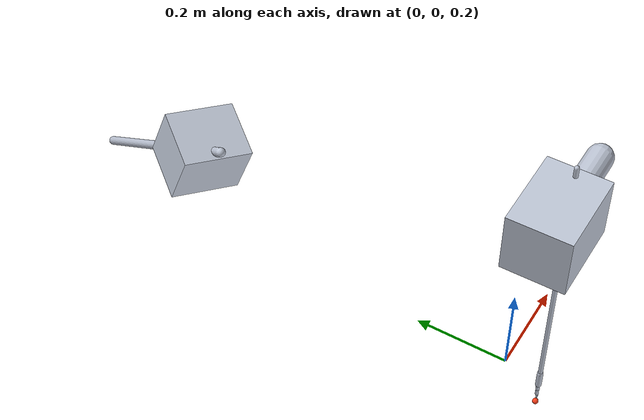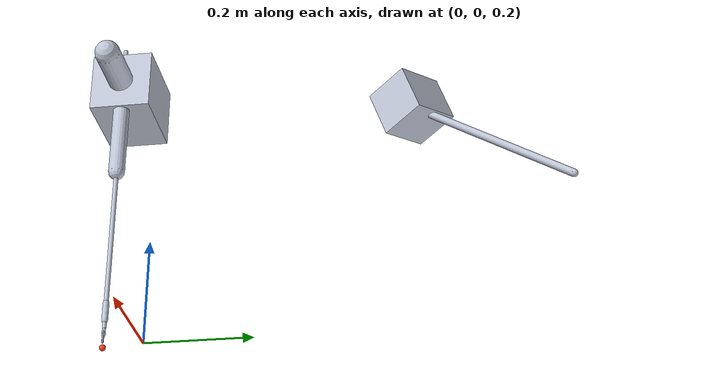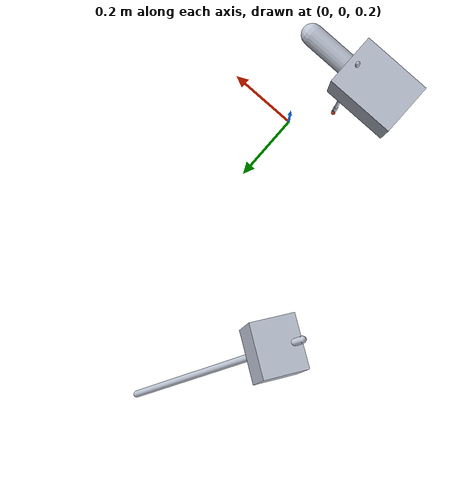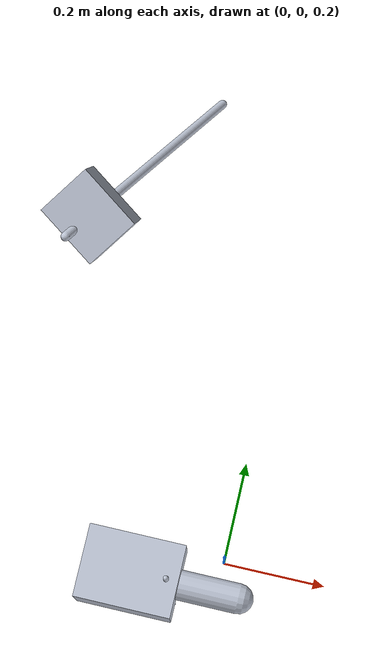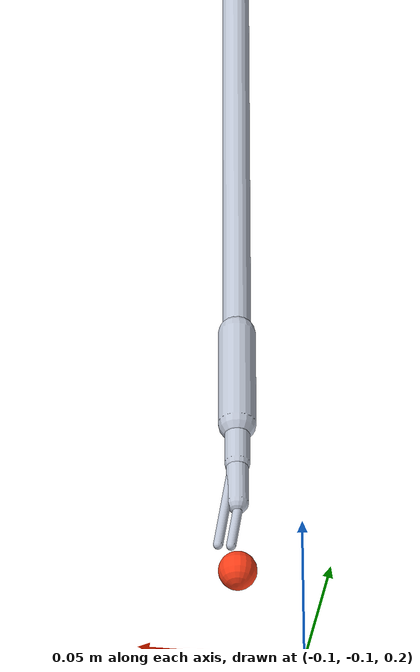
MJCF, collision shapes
<mujoco model="dvrk_psm_ecm_lightweight">
  <compiler angle="radian" autolimits="true"/>

  <default>
    <joint damping="1.5" armature="0.02"/>
    <geom rgba="0.75 0.78 0.84 1" friction="0.8 0.005 0.0001"/>
    <default class="visual">
      <geom contype="0" conaffinity="0" density="0" group="2"/>
    </default>
    <default class="collision">
      <geom group="3"/>
    </default>
  </default>

  <asset>
    <material name="dvrk_white" rgba="0.78 0.80 0.88 1"/>
    <material name="dvrk_dark" rgba="0.08 0.09 0.10 1"/>
    <material name="tool_steel" rgba="0.72 0.72 0.68 1" specular="0.5" shininess="0.6"/>
    <material name="rcm_safe" rgba="0.0 0.85 0.35 1"/>
    <material name="ecm_blue" rgba="0.15 0.35 0.75 1"/>

    <mesh name="si_psm_link_0" file="meshes/Si/PSM_ECM/link_0.STL"/>
    <mesh name="si_psm_link_1" file="meshes/Si/PSM_ECM/link_1.STL"/>
    <mesh name="si_psm_link_4" file="meshes/Si/PSM_ECM/link_4.STL"/>
    <mesh name="psm_tool_main" file="meshes/instruments/420006/tool_main_link.STL"/>
    <mesh name="psm_tool_wrist" file="meshes/instruments/420006/tool_wrist_link.STL"/>
    <mesh name="psm_jaw_left" file="meshes/instruments/420006/tool_wrist_sca_ee_link_1.STL"/>
    <mesh name="psm_jaw_right" file="meshes/instruments/420006/tool_wrist_sca_ee_link_2.STL"/>
    <mesh name="ecm_tool_main" file="meshes/instruments/SF0826001/tool_main_link.STL"/>
    <mesh name="ecm_tool_roll" file="meshes/instruments/SF0826001/tool_roll_link.STL"/>
  </asset>

  <worldbody>
    <body name="psm_base" pos="-0.08 -0.10 0.80">
      <geom class="visual" type="mesh" mesh="si_psm_link_0" material="dvrk_white" pos="-0.16 0 -0.04"/>
      <geom class="collision" type="box" size="0.08 0.06 0.06" pos="-0.06 0 0"/>

      <body name="psm_yaw_link" pos="0 0 0">
        <joint name="psm_yaw" type="hinge" axis="0 0 1" range="-1.2 1.2"/>
        <geom class="visual" type="mesh" mesh="si_psm_link_1" material="dvrk_white" pos="-0.03 -0.05 -0.08"/>
        <geom class="collision" type="capsule" fromto="0 0 0 0.12 0 0" size="0.025"/>

        <body name="psm_pitch_link" pos="0 0 0">
          <joint name="psm_pitch" type="hinge" axis="0 1 0" range="-0.95 0.95"/>
          <site name="psm_rcm_site" pos="0 0 0" size="0.008" rgba="0 0.85 0.35 1"/>
          <geom class="visual" type="mesh" mesh="si_psm_link_4" material="dvrk_white" pos="-0.03 0 -0.08"/>
          <geom class="collision" type="capsule" fromto="0 0 0 0 0 -0.20" size="0.016"/>

          <body name="psm_insertion_link" pos="0 0 0">
            <joint name="psm_insertion" type="slide" axis="0 0 -1" range="0.04 0.33"/>
            <site name="psm_shaft_base_site" pos="0 0 0.08" size="0.004" rgba="0 0.85 0.35 1"/>
            <geom class="visual" type="mesh" mesh="psm_tool_main" material="tool_steel" pos="-0.036 0 0.02"/>
            <geom class="collision" type="capsule" fromto="0 0 0.08 0 0 -0.48" size="0.0045"/>

            <body name="psm_roll_link" pos="0 0 -0.48">
              <joint name="psm_roll" type="hinge" axis="0 0 -1" range="-3.14 3.14"/>
              <geom class="visual" type="mesh" mesh="psm_tool_wrist" material="tool_steel"/>
              <geom class="collision" type="capsule" fromto="0 0 0 0 0 -0.035" size="0.006"/>

              <body name="psm_wrist_pitch_link" pos="0 0 -0.025">
                <joint name="psm_wrist_pitch" type="hinge" axis="0 1 0" range="-1.4 1.4"/>
                <geom class="collision" type="capsule" fromto="0 0 0 0 0 -0.025" size="0.004"/>

                <body name="psm_wrist_yaw_link" pos="0 0 -0.020">
                  <joint name="psm_wrist_yaw" type="hinge" axis="1 0 0" range="-1.4 1.4"/>
                  <geom class="collision" type="capsule" fromto="0 0 0 0 0 -0.020" size="0.0035"/>

                  <body name="psm_jaw_left_link" pos="0.002 0 -0.010">
                    <joint name="psm_jaw" type="hinge" axis="1 0 0" range="0 0.8"/>
                    <geom class="visual" type="mesh" mesh="psm_jaw_left" material="tool_steel"/>
                    <geom class="collision" type="capsule" fromto="0 0 0 0.004 0 -0.026" size="0.0015"/>
                  </body>

                  <body name="psm_jaw_right_link" pos="-0.002 0 -0.010" euler="0 0 3.14159">
                    <geom class="visual" type="mesh" mesh="psm_jaw_right" material="tool_steel"/>
                    <geom class="collision" type="capsule" fromto="0 0 0 -0.004 0 -0.026" size="0.0015"/>
                  </body>

                  <body name="psm_tool_tip" pos="0 0 -0.045">
                    <site name="psm_tool_tip_site" pos="0 0 0" size="0.006" rgba="1 0.25 0.1 1"/>
                    <geom class="visual" type="sphere" size="0.004" rgba="1 0.25 0.1 1"/>
                  </body>
                </body>
              </body>
            </body>
          </body>
        </body>
      </body>
    </body>

    <body name="ecm_base" pos="-0.34 0.46 0.86" euler="0.35 0.0 -0.62">
      <geom class="visual" type="mesh" mesh="si_psm_link_0" material="ecm_blue" pos="-0.12 0 -0.03"/>
      <geom class="collision" type="box" size="0.06 0.05 0.05"/>
      <body name="ecm_scope" pos="0 0 0" euler="0.62 0.0 0.0">
        <geom class="visual" type="mesh" mesh="ecm_tool_main" material="ecm_blue" pos="-0.035 0 0.03"/>
        <geom class="visual" type="mesh" mesh="ecm_tool_roll" material="tool_steel" pos="0 0 -0.45"/>
        <geom class="collision" type="capsule" fromto="0 0 0.08 0 0 -0.45" size="0.008"/>
        <camera name="ecm_camera" mode="fixed" pos="0 0 -0.46" euler="0 3.14159 0" fovy="48"/>
      </body>
    </body>
  </worldbody>

  <actuator>
    <position name="psm_yaw" joint="psm_yaw" kp="80" ctrlrange="-1.2 1.2"/>
    <position name="psm_pitch" joint="psm_pitch" kp="80" ctrlrange="-0.95 0.95"/>
    <position name="psm_insertion" joint="psm_insertion" kp="250" ctrlrange="0.04 0.33"/>
    <position name="psm_roll" joint="psm_roll" kp="35" ctrlrange="-3.14 3.14"/>
    <position name="psm_wrist_pitch" joint="psm_wrist_pitch" kp="25" ctrlrange="-1.4 1.4"/>
    <position name="psm_wrist_yaw" joint="psm_wrist_yaw" kp="25" ctrlrange="-1.4 1.4"/>
    <position name="psm_jaw" joint="psm_jaw" kp="12" ctrlrange="0 0.8"/>
  </actuator>
</mujoco>
